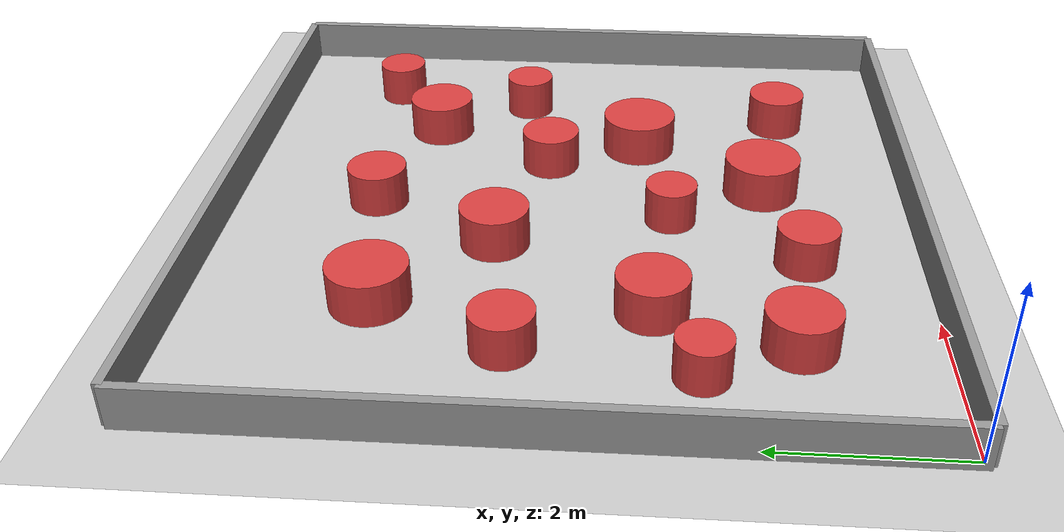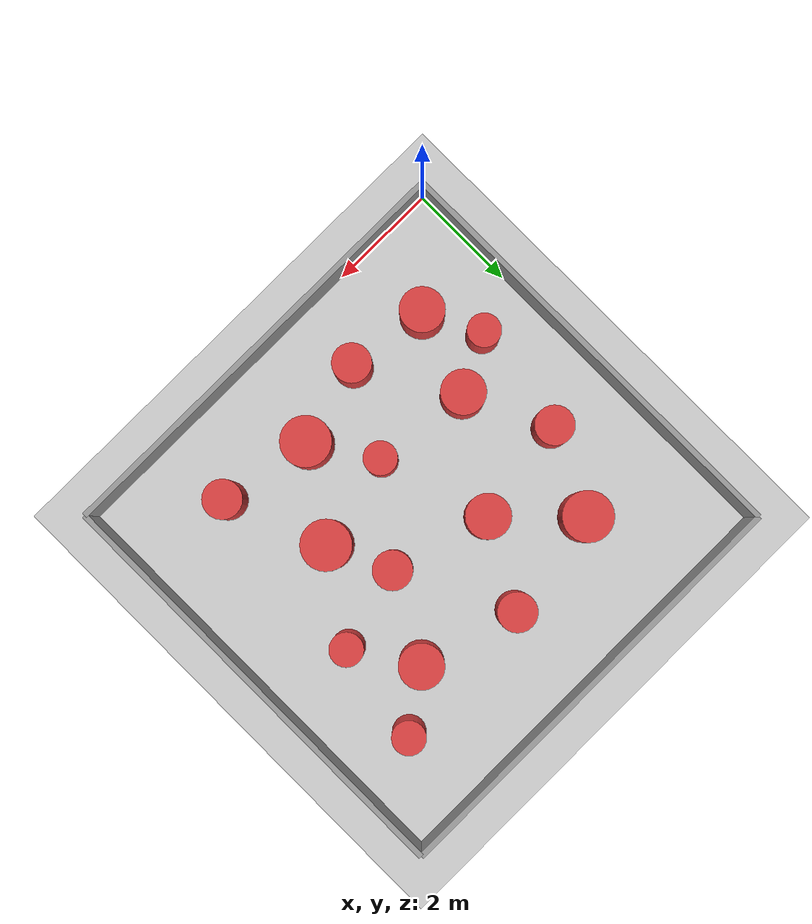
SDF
<?xml version="1.0" ?>
<sdf version="1.6">
  <world name="daars_arena">
    <physics type="ode">
      <max_step_size>0.001</max_step_size>
      <real_time_factor>1</real_time_factor>
    </physics>

    <include><uri>model://sun</uri></include>
    <include><uri>model://ground_plane</uri></include>

    <!-- 8m x 8m arena walls -->
    <model name="wall_n"><static>true</static><pose>4 8.05 0.25 0 0 0</pose>
      <link name="l"><collision name="c"><geometry><box><size>8.1 0.1 0.5</size></box></geometry></collision>
        <visual name="v"><geometry><box><size>8.1 0.1 0.5</size></box></geometry><material><ambient>0.6 0.6 0.6 1</ambient></material></visual></link></model>
    <model name="wall_s"><static>true</static><pose>4 -0.05 0.25 0 0 0</pose>
      <link name="l"><collision name="c"><geometry><box><size>8.1 0.1 0.5</size></box></geometry></collision>
        <visual name="v"><geometry><box><size>8.1 0.1 0.5</size></box></geometry><material><ambient>0.6 0.6 0.6 1</ambient></material></visual></link></model>
    <model name="wall_e"><static>true</static><pose>8.05 4 0.25 0 0 0</pose>
      <link name="l"><collision name="c"><geometry><box><size>0.1 8.1 0.5</size></box></geometry></collision>
        <visual name="v"><geometry><box><size>0.1 8.1 0.5</size></box></geometry><material><ambient>0.6 0.6 0.6 1</ambient></material></visual></link></model>
    <model name="wall_w"><static>true</static><pose>-0.05 4 0.25 0 0 0</pose>
      <link name="l"><collision name="c"><geometry><box><size>0.1 8.1 0.5</size></box></geometry></collision>
        <visual name="v"><geometry><box><size>0.1 8.1 0.5</size></box></geometry><material><ambient>0.6 0.6 0.6 1</ambient></material></visual></link></model>

    <!-- 16 cylindrical obstacles: dense layout with 11 tight passages -->
    <!-- Matches Complex training scenario density (16 obs in 64m²) -->
    <model name="o01"><static>true</static><pose>1.5 1.5 0.25 0 0 0</pose><link name="l"><collision name="c"><geometry><cylinder><radius>0.4</radius><length>0.5</length></cylinder></geometry></collision><visual name="v"><geometry><cylinder><radius>0.4</radius><length>0.5</length></cylinder></geometry><material><ambient>0.85 0.25 0.25 1</ambient></material></visual></link></model>
    <model name="o02"><static>true</static><pose>3.0 1.3 0.25 0 0 0</pose><link name="l"><collision name="c"><geometry><cylinder><radius>0.35</radius><length>0.5</length></cylinder></geometry></collision><visual name="v"><geometry><cylinder><radius>0.35</radius><length>0.5</length></cylinder></geometry><material><ambient>0.85 0.25 0.25 1</ambient></material></visual></link></model>
    <model name="o03"><static>true</static><pose>4.5 1.7 0.25 0 0 0</pose><link name="l"><collision name="c"><geometry><cylinder><radius>0.45</radius><length>0.5</length></cylinder></geometry></collision><visual name="v"><geometry><cylinder><radius>0.45</radius><length>0.5</length></cylinder></geometry><material><ambient>0.85 0.25 0.25 1</ambient></material></visual></link></model>
    <model name="o04"><static>true</static><pose>6.2 1.4 0.25 0 0 0</pose><link name="l"><collision name="c"><geometry><cylinder><radius>0.35</radius><length>0.5</length></cylinder></geometry></collision><visual name="v"><geometry><cylinder><radius>0.35</radius><length>0.5</length></cylinder></geometry><material><ambient>0.85 0.25 0.25 1</ambient></material></visual></link></model>
    <model name="o05"><static>true</static><pose>2.0 3.0 0.25 0 0 0</pose><link name="l"><collision name="c"><geometry><cylinder><radius>0.4</radius><length>0.5</length></cylinder></geometry></collision><visual name="v"><geometry><cylinder><radius>0.4</radius><length>0.5</length></cylinder></geometry><material><ambient>0.85 0.25 0.25 1</ambient></material></visual></link></model>
    <model name="o06"><static>true</static><pose>3.8 2.8 0.25 0 0 0</pose><link name="l"><collision name="c"><geometry><cylinder><radius>0.3</radius><length>0.5</length></cylinder></geometry></collision><visual name="v"><geometry><cylinder><radius>0.3</radius><length>0.5</length></cylinder></geometry><material><ambient>0.85 0.25 0.25 1</ambient></material></visual></link></model>
    <model name="o07"><static>true</static><pose>5.5 3.2 0.25 0 0 0</pose><link name="l"><collision name="c"><geometry><cylinder><radius>0.45</radius><length>0.5</length></cylinder></geometry></collision><visual name="v"><geometry><cylinder><radius>0.45</radius><length>0.5</length></cylinder></geometry><material><ambient>0.85 0.25 0.25 1</ambient></material></visual></link></model>
    <model name="o08"><static>true</static><pose>1.3 4.5 0.25 0 0 0</pose><link name="l"><collision name="c"><geometry><cylinder><radius>0.35</radius><length>0.5</length></cylinder></geometry></collision><visual name="v"><geometry><cylinder><radius>0.35</radius><length>0.5</length></cylinder></geometry><material><ambient>0.85 0.25 0.25 1</ambient></material></visual></link></model>
    <model name="o09"><static>true</static><pose>3.2 4.8 0.25 0 0 0</pose><link name="l"><collision name="c"><geometry><cylinder><radius>0.4</radius><length>0.5</length></cylinder></geometry></collision><visual name="v"><geometry><cylinder><radius>0.4</radius><length>0.5</length></cylinder></geometry><material><ambient>0.85 0.25 0.25 1</ambient></material></visual></link></model>
    <model name="o10"><static>true</static><pose>5.0 4.3 0.25 0 0 0</pose><link name="l"><collision name="c"><geometry><cylinder><radius>0.35</radius><length>0.5</length></cylinder></geometry></collision><visual name="v"><geometry><cylinder><radius>0.35</radius><length>0.5</length></cylinder></geometry><material><ambient>0.85 0.25 0.25 1</ambient></material></visual></link></model>
    <model name="o11"><static>true</static><pose>6.5 4.7 0.25 0 0 0</pose><link name="l"><collision name="c"><geometry><cylinder><radius>0.3</radius><length>0.5</length></cylinder></geometry></collision><visual name="v"><geometry><cylinder><radius>0.3</radius><length>0.5</length></cylinder></geometry><material><ambient>0.85 0.25 0.25 1</ambient></material></visual></link></model>
    <model name="o12"><static>true</static><pose>2.0 6.0 0.25 0 0 0</pose><link name="l"><collision name="c"><geometry><cylinder><radius>0.45</radius><length>0.5</length></cylinder></geometry></collision><visual name="v"><geometry><cylinder><radius>0.45</radius><length>0.5</length></cylinder></geometry><material><ambient>0.85 0.25 0.25 1</ambient></material></visual></link></model>
    <model name="o13"><static>true</static><pose>4.0 6.3 0.25 0 0 0</pose><link name="l"><collision name="c"><geometry><cylinder><radius>0.35</radius><length>0.5</length></cylinder></geometry></collision><visual name="v"><geometry><cylinder><radius>0.35</radius><length>0.5</length></cylinder></geometry><material><ambient>0.85 0.25 0.25 1</ambient></material></visual></link></model>
    <model name="o14"><static>true</static><pose>5.8 5.8 0.25 0 0 0</pose><link name="l"><collision name="c"><geometry><cylinder><radius>0.4</radius><length>0.5</length></cylinder></geometry></collision><visual name="v"><geometry><cylinder><radius>0.4</radius><length>0.5</length></cylinder></geometry><material><ambient>0.85 0.25 0.25 1</ambient></material></visual></link></model>
    <model name="o15"><static>true</static><pose>6.8 6.5 0.25 0 0 0</pose><link name="l"><collision name="c"><geometry><cylinder><radius>0.3</radius><length>0.5</length></cylinder></geometry></collision><visual name="v"><geometry><cylinder><radius>0.3</radius><length>0.5</length></cylinder></geometry><material><ambient>0.85 0.25 0.25 1</ambient></material></visual></link></model>
    <model name="o16"><static>true</static><pose>1.0 2.5 0.25 0 0 0</pose><link name="l"><collision name="c"><geometry><cylinder><radius>0.3</radius><length>0.5</length></cylinder></geometry></collision><visual name="v"><geometry><cylinder><radius>0.3</radius><length>0.5</length></cylinder></geometry><material><ambient>0.85 0.25 0.25 1</ambient></material></visual></link></model>

    <!-- Gazebo plugins -->
  </world>
</sdf>
